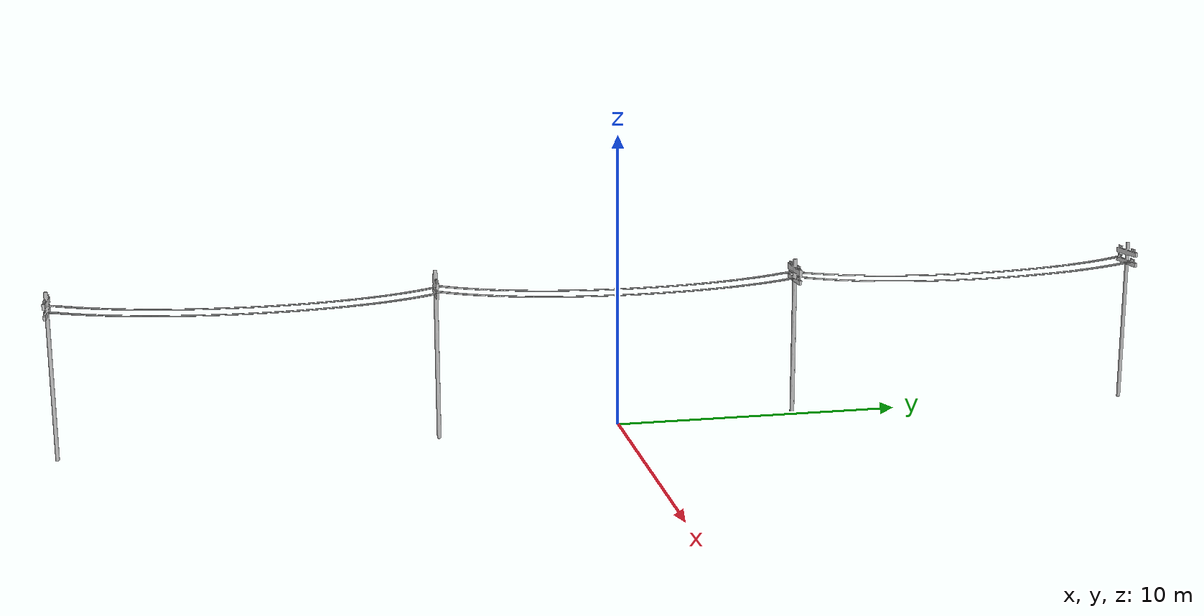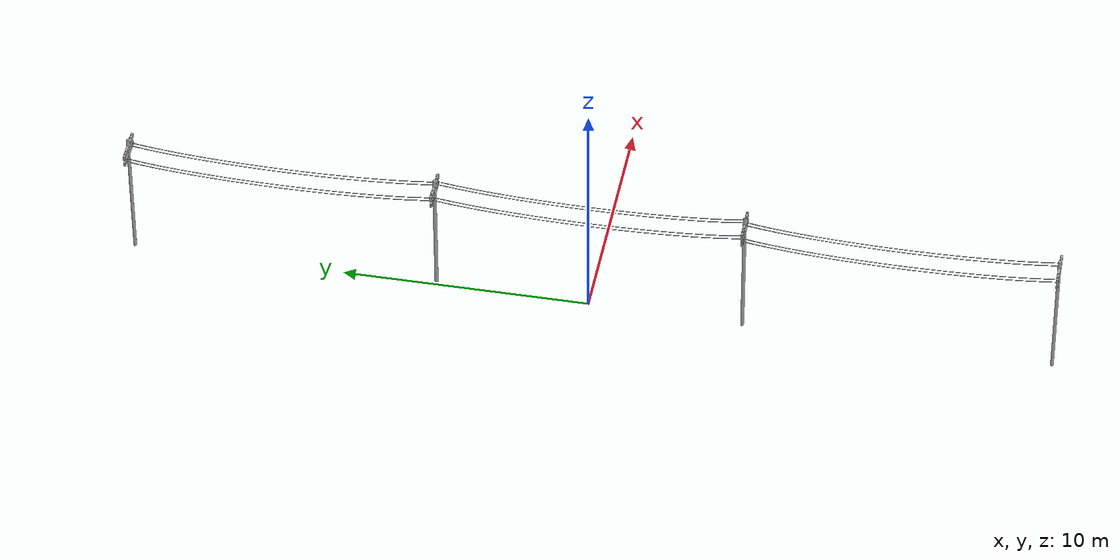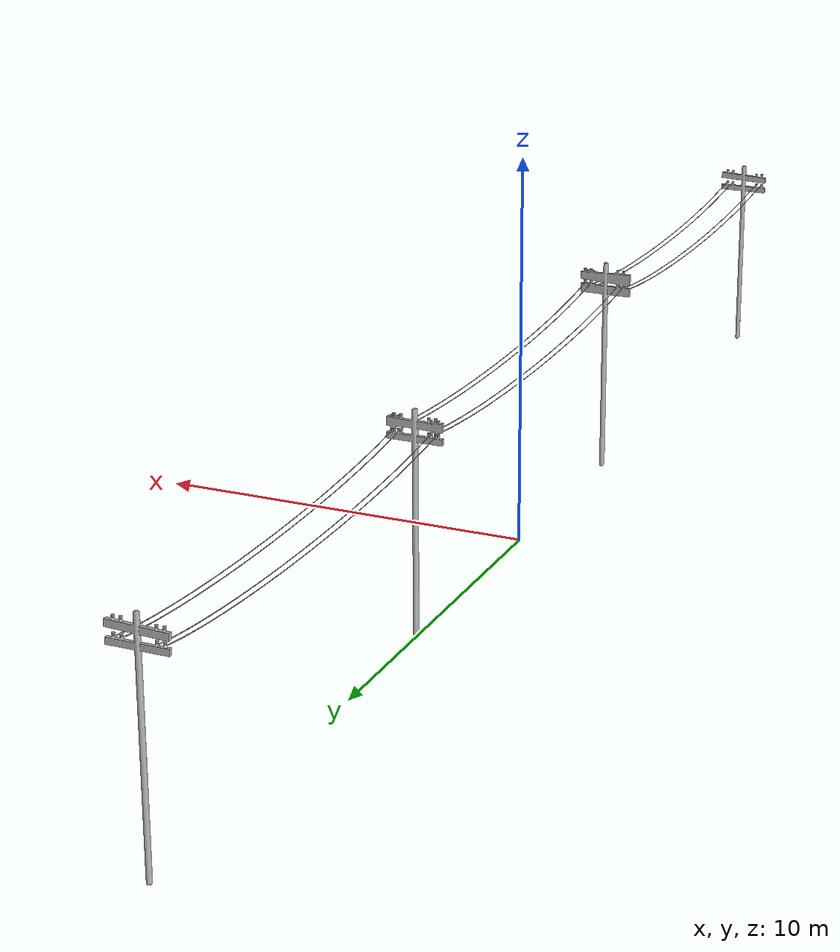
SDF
<?xml version="1.0" ?>
<sdf version="1.6">
  <model name="electrical">
    <static>true</static>
    <link name="link">
      <visual name="visual">
	<pose>0 0 3 1.5708 0 0</pose>
        <geometry>
          <mesh>
            <uri>model://electrical_transmission/meshes/electrical.obj</uri>
          </mesh>
        </geometry>
      </visual>
      <collision name="collision">
        <geometry>
          <mesh>
            <uri>model://electrical_transmission/meshes/electrical.obj</uri>
          </mesh>
        </geometry>
      </collision>
    </link>
  </model>
</sdf>
